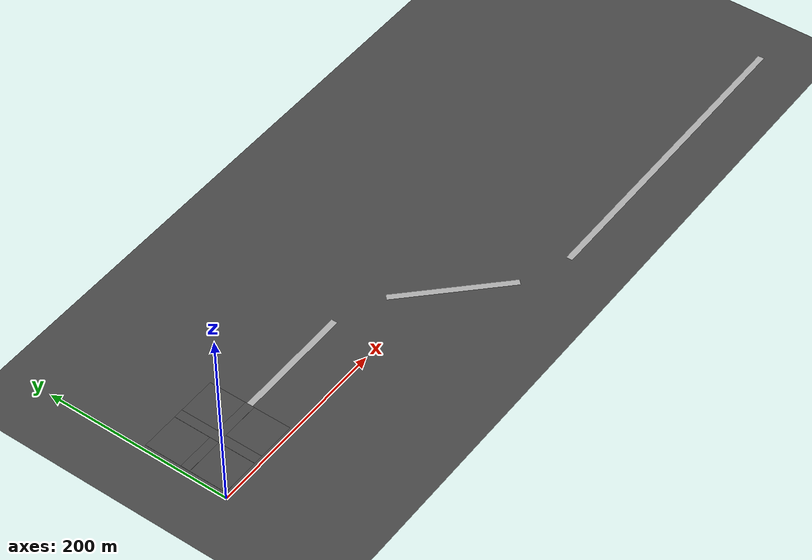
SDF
<sdf version="1.5">
 <world name="default">
  <light name="sun" type="directional">
   <pose>0 0 10 0 -0 0</pose>
   <diffuse>0.8 0.8 0.8 1</diffuse>
   <specular>0.2 0.2 0.2 1</specular>
   <attenuation>
    <range>1000</range>
    <constant>0.9</constant>
    <linear>0.01</linear>
    <quadratic>0.001</quadratic>
   </attenuation>
   <direction>-0.5 0.1 -0.9</direction>
  </light>
  <scene>
   <sky><clouds><speed>5</speed></clouds></sky>
   <ambient>0.4 0.4 0.4 1</ambient>
   <background>0.7 0.7 0.7 1</background>
   <shadows>1</shadows>
  </scene>
  <model name="car_wheel">
   <pose>-10 0 -2e-05 0 -0 0</pose>
   <link name="link">
    <pose>-10 0 0 0 -0 0</pose>
    <inertial>
     <inertia><ixx>1</ixx><ixy>0</ixy><ixz>0</ixz><iyy>1</iyy><iyz>0</iyz><izz>1</izz></inertia>
     <mass>1</mass>
    </inertial>
   </link>
  </model>
  <model name="ground_plane">
   <static>1</static>
   <link name="link">
    <pose>50 100 0.075 0 -0 0</pose>
    <collision name="collision">
     <geometry><plane><normal>0 0 1</normal><size>100 20</size></plane></geometry>
    </collision>
    <visual name="visual">
     <cast_shadows>0</cast_shadows>
     <geometry><plane><normal>0 0 1</normal><size>1 1</size></plane></geometry>
     <material>
      <script>
       <uri>model://asphalt_plane/materials/scripts</uri>
       <uri>model://asphalt_plane/materials/textures</uri>
       <name>vrc/asphalt</name>
      </script>
     </material>
    </visual>
   </link>
  </model>
  <model name="road_2_0_1">
   <pose>156.657 49.9983 0.075 0 -0 0</pose>
   <static>1</static>
   <link name="link">
    <collision name="collision">
     <geometry><box><size>125.21 6.54 0.0001</size></box></geometry>
     <max_contacts>100</max_contacts>
    </collision>
    <visual name="visual">
     <cast_shadows>0</cast_shadows>
     <geometry><box><size>125.21 6.54 0.0001</size></box></geometry>
     <material>
      <script>
       <uri>models/newstraight/materials/scripts</uri>
       <uri>models/newstraight/materials/textures</uri>
       <name>newstraight</name>
      </script>
     </material>
    </visual>
   </link>
  </model>
  <model name="intersection_1_1">
   <pose>50 50 0 0 -0 0</pose>
   <static>1</static>
   <link name="link">
    <collision name="collision"><geometry><box><size>10 10 1e-06</size></box></geometry></collision>
    <visual name="visual">
     <cast_shadows>0</cast_shadows>
     <geometry><box><size>10 10 0.1</size></box></geometry>
     <material>
      <script>
       <uri>models/intersection/materials/scripts</uri>
       <uri>models/intersection/materials/textures</uri>
       <name>intersection</name>
      </script>
     </material>
    </visual>
   </link>
  </model>
  <physics name="default_physics" default="0" type="ode">
   <max_step_size>0.001</max_step_size>
   <real_time_factor>1</real_time_factor>
   <real_time_update_rate>1000</real_time_update_rate>
   <gravity>0 0 -9.8</gravity>
   <magnetic_field>6e-06 2.3e-05 -4.2e-05</magnetic_field>
  </physics>
  <audio><device>default</device></audio>
  <spherical_coordinates>
   <surface_model>EARTH_WGS84</surface_model>
   <latitude_deg>0</latitude_deg>
   <longitude_deg>0</longitude_deg>
   <elevation>0</elevation>
   <heading_deg>0</heading_deg>
  </spherical_coordinates>
  <model name="asphalt_plane">
   <static>1</static>
   <link name="link">
    <collision name="collision"><geometry><box><size>90 90 0.1</size></box></geometry></collision>
    <visual name="visual">
     <cast_shadows>0</cast_shadows>
     <geometry><box><size>90 90 0.1</size></box></geometry>
     <material>
      <script>
       <uri>model://asphalt_plane/materials/scripts</uri>
       <uri>model://asphalt_plane/materials/textures</uri>
       <name>vrc/asphalt</name>
      </script>
     </material>
    </visual>
   </link>
   <pose>50 50 -0.15 0 -0 0</pose>
  </model>
  <model name="comps_road">
   <static>1</static>
   <link name="link">
    <collision name="collision"><geometry><box><size>90 10 0.1</size></box></geometry></collision>
    <visual name="visual">
     <cast_shadows>0</cast_shadows>
     <geometry><box><size>90 10 0.1</size></box></geometry>
     <material>
      <script>
       <uri>model://comps_road/materials/scripts</uri>
       <uri>model://comps_road/materials/textures</uri>
       <name>comps_road</name>
      </script>
     </material>
    </visual>
   </link>
   <pose>50 50 0.03 0 -0 1.5707</pose>
  </model>
  <model name="comps_road_0">
   <static>1</static>
   <link name="link">
    <collision name="collision"><geometry><box><size>90 10 0.1</size></box></geometry></collision>
    <visual name="visual">
     <cast_shadows>0</cast_shadows>
     <geometry><box><size>90 10 0.1</size></box></geometry>
     <material>
      <script>
       <uri>model://comps_road/materials/scripts</uri>
       <uri>model://comps_road/materials/textures</uri>
       <name>comps_road</name>
      </script>
     </material>
    </visual>
   </link>
   <pose>50 50 0.03 0 -0 0</pose>
  </model>
  <model name="road_2_0_1_clone">
   <pose>314.959 -14.6203 0.075 0 0 -0.787483</pose>
   <static>1</static>
   <link name="link">
    <collision name="collision"><geometry><box><size>125.21 6.54 0.0001</size></box></geometry></collision>
    <visual name="visual">
     <cast_shadows>0</cast_shadows>
     <geometry><box><size>125.21 6.54 0.0001</size></box></geometry>
     <material>
      <script>
       <uri>models/newstraight/materials/scripts</uri>
       <uri>models/newstraight/materials/textures</uri>
       <name>newstraight</name>
      </script>
     </material>
    </visual>
   </link>
  </model>
  <model name="road_2_0_1_clone_0">
   <pose>584.085 -79.1004 0.075 0 -0 0</pose>
   <static>1</static>
   <link name="link">
    <collision name="collision"><geometry><box><size>346.797 6.54 0.0001</size></box></geometry></collision>
    <visual name="visual">
     <cast_shadows>0</cast_shadows>
     <geometry><box><size>346.797 6.54 0.0001</size></box></geometry>
     <material>
      <script>
       <uri>models/newstraight/materials/scripts</uri>
       <uri>models/newstraight/materials/textures</uri>
       <name>newstraight</name>
      </script>
     </material>
    </visual>
   </link>
  </model>
 </world>
</sdf>
